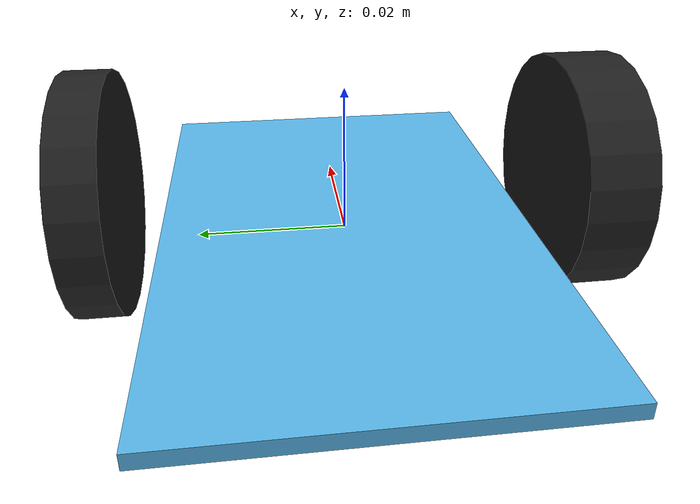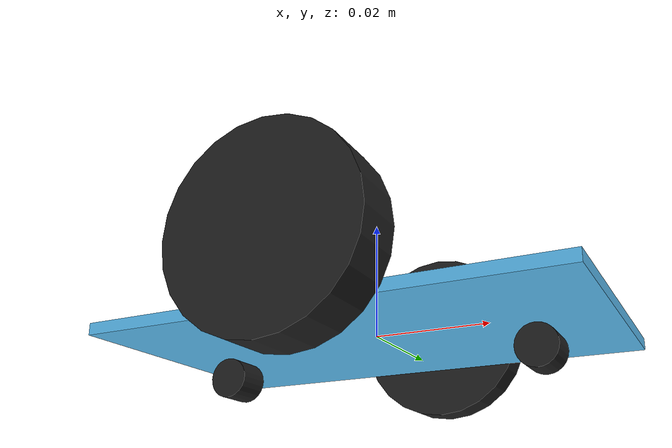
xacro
<?xml version="1.0" ?>

<robot name="umouse" xmlns:xacro="http://ros.org/wiki/xacro">

  <!-- BGN - Include -->
  <xacro:include filename="$(find umouse_description)/urdf/links_joints.xacro" />
  <xacro:include filename="$(find umouse_description)/urdf/gazebo.xacro" />
  <!-- END - Include -->

  <material name="white">
    <color rgba="1 1 1 1"/>
  </material>

  <material name="black">
    <color rgba="0 0 0 1"/>
  </material>

  <material name="green">
    <color rgba="0.1 0.8 0.1 1"/>
  </material>

  <!-- BGN - Robot description -->

  <link name="base_link" />

  <joint name="base__base_link" type="fixed">
    <parent link="base_link"/>
    <child link="base"/>
  </joint>

  <link name="base">
    <origin rpy="0 0 0" xyz="0.00 0 0.00"/>
    <visual>
      <geometry>
        <box size="0.08 0.05 0.002"/>
      </geometry>
    </visual>
    <collision>
      <geometry>
        <box size="0.08 0.05 0.002"/>
      </geometry>
    </collision>
    <inertial>
      <mass value="0.5" />
      <inertia ixx="1.0" ixy="0.0" ixz="0.0" iyy="1.0" iyz="0.0" izz="1.0" />
    </inertial>

  </link>

  <link name="fcastor_wheel">
    <origin rpy="0 0 0" xyz="0.00 0 0.00"/>
    <visual>
      <geometry>
        <cylinder length="0.006" radius="0.0035"/>
      </geometry>
    </visual>
    <collision>
      <geometry>
        <cylinder length="0.006" radius="0.0035"/>
      </geometry>
    </collision>
    <inertial>
      <mass value="0.05" />
      <inertia ixx="0.001" ixy="0.0" ixz="0.0" iyy="0.001" iyz="0.0" izz="0.001" />
    </inertial>
  </link>

  <joint name="base__fcastor_wheel" type="continuous">
    <parent link="base"/>
    <child link="fcastor_wheel"/>
    <origin xyz="0.028 0 -0.005" rpy="1.5708 0 0"/>
    <axis xyz="0 0 1"/>
  </joint>

  <link name="bcastor_wheel">
    <origin rpy="0 0 0" xyz="0.00 0 0.00"/>
    <visual>
      <geometry>
        <cylinder length="0.006" radius="0.0035"/>
      </geometry>
    </visual>
    <collision>
      <geometry>
        <cylinder length="0.006" radius="0.0035"/>
      </geometry>
    </collision>
    <inertial>
      <mass value="0.05" />
      <inertia ixx="0.001" ixy="0.0" ixz="0.0" iyy="0.001" iyz="0.0" izz="0.001" />
    </inertial>
  </link>

  <joint name="base__bcastor_wheel" type="continuous">
    <parent link="base"/>
    <child link="bcastor_wheel"/>
    <origin xyz="-0.028 0 -0.005" rpy="1.5708 0 0"/>
    <axis xyz="0 0 1"/>
  </joint>

  <link name="left_wheel">
    <origin rpy="0 0 0" xyz="0.00 0 0.00"/>
    <visual>
      <geometry>
        <cylinder length="0.006" radius="0.016"/>
      </geometry>
    </visual>
    <collision>
      <geometry>
        <cylinder length="0.006" radius="0.016"/>
      </geometry>
    </collision>
    <inertial>
      <mass value="0.05" />
      <inertia ixx="0.001" ixy="0.0" ixz="0.0" iyy="0.001" iyz="0.0" izz="0.001" />
    </inertial>
  </link>

  <joint name="wheel_left_joint" type="continuous">
    <parent link="base"/>
    <child link="left_wheel"/>
    <origin xyz="0 0.032 0.007" rpy="1.5708 0 0"/>
    <axis xyz="0 0 -1"/>
  </joint>

  <link name="right_wheel">
    <origin rpy="0 0 0" xyz="0.00 0 0.00"/>
    <visual>
      <geometry>
        <cylinder length="0.009" radius="0.016"/>
      </geometry>
    </visual>
    <collision>
      <geometry>
        <cylinder length="0.009" radius="0.016"/>
      </geometry>
    </collision>
    <inertial>
      <mass value="0.05" />
      <inertia ixx="0.001" ixy="0.0" ixz="0.0" iyy="0.001" iyz="0.0" izz="0.001" />
    </inertial>
  </link>

  <joint name="wheel_right_joint" type="continuous">
    <parent link="base"/>
    <child link="right_wheel"/>
    <origin xyz="0 -0.032 0.007" rpy="1.5708 0 0"/>
    <axis xyz="0 0 -1"/>
  </joint>

</robot>
